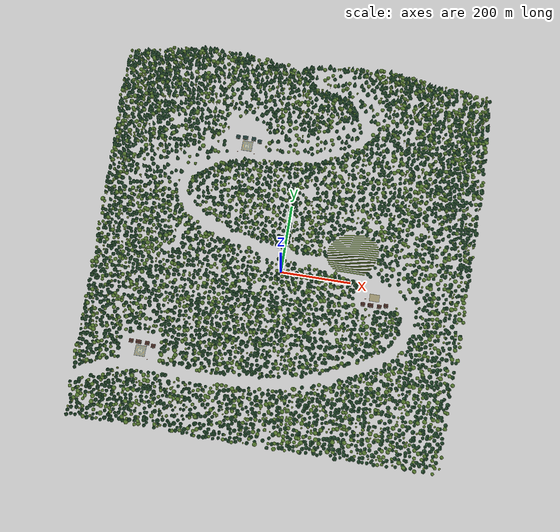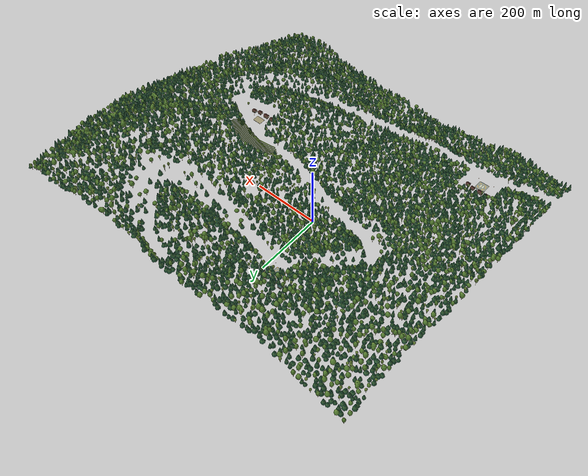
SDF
<sdf version="1.9">
 <world name="alishan_showcase">
  <gravity>0 0 -9.81</gravity>
  <physics name="showcase" type="ignored">
   <max_step_size>0.004</max_step_size>
   <real_time_factor>1</real_time_factor>
  </physics>
  <plugin filename="gz-sim-physics-system" name="gz::sim::systems::Physics"/>
  <plugin filename="gz-sim-user-commands-system" name="gz::sim::systems::UserCommands"/>
  <plugin filename="gz-sim-scene-broadcaster-system" name="gz::sim::systems::SceneBroadcaster"/>
  <scene>
   <ambient>0.64 0.67 0.68 1</ambient>
   <background>0.72 0.82 0.88 1</background>
   <shadows>true</shadows>
  </scene>
  <light name="morning_sun" type="directional">
   <pose>0 0 1000 0 0 0</pose>
   <diffuse>0.95 0.88 0.73 1</diffuse>
   <specular>0.10 0.10 0.08 1</specular>
   <direction>-0.45 0.35 -0.85</direction>
  </light>
  <include><uri>model://showcase_clearings</uri></include>
  <include><uri>model://showcase_village</uri></include>
  <include><uri>model://showcase_tea</uri></include>
  <include><uri>model://showcase_forest</uri></include>
 </world>
</sdf>

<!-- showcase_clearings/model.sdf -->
<sdf version="1.9">
  <model name="showcase_clearings">
    <static>true</static>
    <link name="landscape">
      <visual name="clearings">
        <cast_shadows>true</cast_shadows>
        <geometry>
          <mesh>
            <uri>model://showcase_clearings/meshes/clearings.dae</uri>
          </mesh>
        </geometry>
      </visual>
      <collision name="foundation_0">
        <pose>-325 -302 125.40058656560478 0 0 0</pose>
        <geometry>
          <box>
            <size>28 28 0.6</size>
          </box>
        </geometry>
      </collision>
      <collision name="foundation_1">
        <pose>260 -73 170.4130429163623 0 0 0</pose>
        <geometry>
          <box>
            <size>26 19 0.4</size>
          </box>
        </geometry>
      </collision>
      <collision name="foundation_2">
        <pose>-140 285 197.94680746284016 0 0 0</pose>
        <geometry>
          <box>
            <size>28 28 0.6</size>
          </box>
        </geometry>
      </collision>
    </link>
  </model>
</sdf>

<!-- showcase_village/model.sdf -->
<sdf version="1.9">
  <model name="showcase_village">
    <static>true</static>
    <link name="landscape">
      <visual name="cabins">
        <cast_shadows>true</cast_shadows>
        <geometry>
          <mesh>
            <uri>model://showcase_village/meshes/cabins.dae</uri>
          </mesh>
        </geometry>
      </visual>
      <collision name="foundation_0">
        <pose>-353 -280 129.0505865656048 0 0 0</pose>
        <geometry>
          <box>
            <size>9 8 7.0</size>
          </box>
        </geometry>
      </collision>
      <collision name="foundation_1">
        <pose>-333 -280 129.5505865656048 0 0 0</pose>
        <geometry>
          <box>
            <size>12 8 8.0</size>
          </box>
        </geometry>
      </collision>
      <collision name="foundation_2">
        <pose>-310 -280 129.0505865656048 0 0 0</pose>
        <geometry>
          <box>
            <size>9 8 7.0</size>
          </box>
        </geometry>
      </collision>
      <collision name="foundation_3">
        <pose>-293 -285 129.0505865656048 0 0 0</pose>
        <geometry>
          <box>
            <size>9 8 7.0</size>
          </box>
        </geometry>
      </collision>
      <collision name="foundation_4">
        <pose>232 -95 174.0330429163623 0 0 0</pose>
        <geometry>
          <box>
            <size>9 8 7.0</size>
          </box>
        </geometry>
      </collision>
      <collision name="foundation_5">
        <pose>252 -95 174.5330429163623 0 0 0</pose>
        <geometry>
          <box>
            <size>12 8 8.0</size>
          </box>
        </geometry>
      </collision>
      <collision name="foundation_6">
        <pose>275 -95 174.0330429163623 0 0 0</pose>
        <geometry>
          <box>
            <size>9 8 7.0</size>
          </box>
        </geometry>
      </collision>
      <collision name="foundation_7">
        <pose>292 -90 174.0330429163623 0 0 0</pose>
        <geometry>
          <box>
            <size>9 8 7.0</size>
          </box>
        </geometry>
      </collision>
      <collision name="foundation_8">
        <pose>-168 307 201.59680746284016 0 0 0</pose>
        <geometry>
          <box>
            <size>9 8 7.0</size>
          </box>
        </geometry>
      </collision>
      <collision name="foundation_9">
        <pose>-148 307 202.09680746284016 0 0 0</pose>
        <geometry>
          <box>
            <size>12 8 8.0</size>
          </box>
        </geometry>
      </collision>
      <collision name="foundation_10">
        <pose>-125 307 201.59680746284016 0 0 0</pose>
        <geometry>
          <box>
            <size>9 8 7.0</size>
          </box>
        </geometry>
      </collision>
      <collision name="foundation_11">
        <pose>-108 302 201.59680746284016 0 0 0</pose>
        <geometry>
          <box>
            <size>9 8 7.0</size>
          </box>
        </geometry>
      </collision>
    </link>
  </model>
</sdf>

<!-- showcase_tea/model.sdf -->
<sdf version="1.9">
  <model name="showcase_tea">
    <static>true</static>
    <link name="landscape">
      <visual name="tea_rows">
        <cast_shadows>true</cast_shadows>
        <geometry>
          <mesh>
            <uri>model://showcase_tea/meshes/tea_rows.dae</uri>
          </mesh>
        </geometry>
      </visual>
    </link>
  </model>
</sdf>

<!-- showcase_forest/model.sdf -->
<sdf version="1.9">
  <model name="showcase_forest">
    <static>true</static>
    <link name="landscape">
      <visual name="forest_0_0">
        <cast_shadows>true</cast_shadows>
        <geometry>
          <mesh>
            <uri>model://showcase_forest/meshes/forest_0_0.dae</uri>
          </mesh>
        </geometry>
      </visual>
      <visual name="forest_0_1">
        <cast_shadows>true</cast_shadows>
        <geometry>
          <mesh>
            <uri>model://showcase_forest/meshes/forest_0_1.dae</uri>
          </mesh>
        </geometry>
      </visual>
      <visual name="forest_0_2">
        <cast_shadows>true</cast_shadows>
        <geometry>
          <mesh>
            <uri>model://showcase_forest/meshes/forest_0_2.dae</uri>
          </mesh>
        </geometry>
      </visual>
      <visual name="forest_0_3">
        <cast_shadows>true</cast_shadows>
        <geometry>
          <mesh>
            <uri>model://showcase_forest/meshes/forest_0_3.dae</uri>
          </mesh>
        </geometry>
      </visual>
      <visual name="forest_0_4">
        <cast_shadows>true</cast_shadows>
        <geometry>
          <mesh>
            <uri>model://showcase_forest/meshes/forest_0_4.dae</uri>
          </mesh>
        </geometry>
      </visual>
      <visual name="forest_0_5">
        <cast_shadows>true</cast_shadows>
        <geometry>
          <mesh>
            <uri>model://showcase_forest/meshes/forest_0_5.dae</uri>
          </mesh>
        </geometry>
      </visual>
      <visual name="forest_0_6">
        <cast_shadows>true</cast_shadows>
        <geometry>
          <mesh>
            <uri>model://showcase_forest/meshes/forest_0_6.dae</uri>
          </mesh>
        </geometry>
      </visual>
      <visual name="forest_0_7">
        <cast_shadows>true</cast_shadows>
        <geometry>
          <mesh>
            <uri>model://showcase_forest/meshes/forest_0_7.dae</uri>
          </mesh>
        </geometry>
      </visual>
      <visual name="forest_1_0">
        <cast_shadows>true</cast_shadows>
        <geometry>
          <mesh>
            <uri>model://showcase_forest/meshes/forest_1_0.dae</uri>
          </mesh>
        </geometry>
      </visual>
      <visual name="forest_1_1">
        <cast_shadows>true</cast_shadows>
        <geometry>
          <mesh>
            <uri>model://showcase_forest/meshes/forest_1_1.dae</uri>
          </mesh>
        </geometry>
      </visual>
      <visual name="forest_1_2">
        <cast_shadows>true</cast_shadows>
        <geometry>
          <mesh>
            <uri>model://showcase_forest/meshes/forest_1_2.dae</uri>
          </mesh>
        </geometry>
      </visual>
      <visual name="forest_1_3">
        <cast_shadows>true</cast_shadows>
        <geometry>
          <mesh>
            <uri>model://showcase_forest/meshes/forest_1_3.dae</uri>
          </mesh>
        </geometry>
      </visual>
      <visual name="forest_1_4">
        <cast_shadows>true</cast_shadows>
        <geometry>
          <mesh>
            <uri>model://showcase_forest/meshes/forest_1_4.dae</uri>
          </mesh>
        </geometry>
      </visual>
      <visual name="forest_1_5">
        <cast_shadows>true</cast_shadows>
        <geometry>
          <mesh>
            <uri>model://showcase_forest/meshes/forest_1_5.dae</uri>
          </mesh>
        </geometry>
      </visual>
      <visual name="forest_1_6">
        <cast_shadows>true</cast_shadows>
        <geometry>
          <mesh>
            <uri>model://showcase_forest/meshes/forest_1_6.dae</uri>
          </mesh>
        </geometry>
      </visual>
      <visual name="forest_1_7">
        <cast_shadows>true</cast_shadows>
        <geometry>
          <mesh>
            <uri>model://showcase_forest/meshes/forest_1_7.dae</uri>
          </mesh>
        </geometry>
      </visual>
      <visual name="forest_2_0">
        <cast_shadows>true</cast_shadows>
        <geometry>
          <mesh>
            <uri>model://showcase_forest/meshes/forest_2_0.dae</uri>
          </mesh>
        </geometry>
      </visual>
      <visual name="forest_2_1">
        <cast_shadows>true</cast_shadows>
        <geometry>
          <mesh>
            <uri>model://showcase_forest/meshes/forest_2_1.dae</uri>
          </mesh>
        </geometry>
      </visual>
      <visual name="forest_2_2">
        <cast_shadows>true</cast_shadows>
        <geometry>
          <mesh>
            <uri>model://showcase_forest/meshes/forest_2_2.dae</uri>
          </mesh>
        </geometry>
      </visual>
      <visual name="forest_2_3">
        <cast_shadows>true</cast_shadows>
        <geometry>
          <mesh>
            <uri>model://showcase_forest/meshes/forest_2_3.dae</uri>
          </mesh>
        </geometry>
      </visual>
      <visual name="forest_2_4">
        <cast_shadows>true</cast_shadows>
        <geometry>
          <mesh>
            <uri>model://showcase_forest/meshes/forest_2_4.dae</uri>
          </mesh>
        </geometry>
      </visual>
      <visual name="forest_2_5">
        <cast_shadows>true</cast_shadows>
        <geometry>
          <mesh>
            <uri>model://showcase_forest/meshes/forest_2_5.dae</uri>
          </mesh>
        </geometry>
      </visual>
      <visual name="forest_2_6">
        <cast_shadows>true</cast_shadows>
        <geometry>
          <mesh>
            <uri>model://showcase_forest/meshes/forest_2_6.dae</uri>
          </mesh>
        </geometry>
      </visual>
      <visual name="forest_2_7">
        <cast_shadows>true</cast_shadows>
        <geometry>
          <mesh>
            <uri>model://showcase_forest/meshes/forest_2_7.dae</uri>
          </mesh>
        </geometry>
      </visual>
      <visual name="forest_3_0">
        <cast_shadows>true</cast_shadows>
        <geometry>
          <mesh>
            <uri>model://showcase_forest/meshes/forest_3_0.dae</uri>
          </mesh>
        </geometry>
      </visual>
      <visual name="forest_3_1">
        <cast_shadows>true</cast_shadows>
        <geometry>
          <mesh>
            <uri>model://showcase_forest/meshes/forest_3_1.dae</uri>
          </mesh>
        </geometry>
      </visual>
      <visual name="forest_3_2">
        <cast_shadows>true</cast_shadows>
        <geometry>
          <mesh>
            <uri>model://showcase_forest/meshes/forest_3_2.dae</uri>
          </mesh>
        </geometry>
      </visual>
      <visual name="forest_3_3">
        <cast_shadows>true</cast_shadows>
        <geometry>
          <mesh>
            <uri>model://showcase_forest/meshes/forest_3_3.dae</uri>
          </mesh>
        </geometry>
      </visual>
      <visual name="forest_3_4">
        <cast_shadows>true</cast_shadows>
        <geometry>
          <mesh>
            <uri>model://showcase_forest/meshes/forest_3_4.dae</uri>
          </mesh>
        </geometry>
      </visual>
      <visual name="forest_3_5">
        <cast_shadows>true</cast_shadows>
        <geometry>
          <mesh>
            <uri>model://showcase_forest/meshes/forest_3_5.dae</uri>
          </mesh>
        </geometry>
      </visual>
      <visual name="forest_3_6">
        <cast_shadows>true</cast_shadows>
        <geometry>
          <mesh>
            <uri>model://showcase_forest/meshes/forest_3_6.dae</uri>
          </mesh>
        </geometry>
      </visual>
      <visual name="forest_3_7">
        <cast_shadows>true</cast_shadows>
        <geometry>
          <mesh>
            <uri>model://showcase_forest/meshes/forest_3_7.dae</uri>
          </mesh>
        </geometry>
      </visual>
      <visual name="forest_4_0">
        <cast_shadows>true</cast_shadows>
        <geometry>
          <mesh>
            <uri>model://showcase_forest/meshes/forest_4_0.dae</uri>
          </mesh>
        </geometry>
      </visual>
      <visual name="forest_4_1">
        <cast_shadows>true</cast_shadows>
        <geometry>
          <mesh>
            <uri>model://showcase_forest/meshes/forest_4_1.dae</uri>
          </mesh>
        </geometry>
      </visual>
      <visual name="forest_4_2">
        <cast_shadows>true</cast_shadows>
        <geometry>
          <mesh>
            <uri>model://showcase_forest/meshes/forest_4_2.dae</uri>
          </mesh>
        </geometry>
      </visual>
      <visual name="forest_4_3">
        <cast_shadows>true</cast_shadows>
        <geometry>
          <mesh>
            <uri>model://showcase_forest/meshes/forest_4_3.dae</uri>
          </mesh>
        </geometry>
      </visual>
      <visual name="forest_4_4">
        <cast_shadows>true</cast_shadows>
        <geometry>
          <mesh>
            <uri>model://showcase_forest/meshes/forest_4_4.dae</uri>
          </mesh>
        </geometry>
      </visual>
      <visual name="forest_4_5">
        <cast_shadows>true</cast_shadows>
        <geometry>
          <mesh>
            <uri>model://showcase_forest/meshes/forest_4_5.dae</uri>
          </mesh>
        </geometry>
      </visual>
      <visual name="forest_4_6">
        <cast_shadows>true</cast_shadows>
        <geometry>
          <mesh>
            <uri>model://showcase_forest/meshes/forest_4_6.dae</uri>
          </mesh>
        </geometry>
      </visual>
      <visual name="forest_4_7">
        <cast_shadows>true</cast_shadows>
        <geometry>
          <mesh>
            <uri>model://showcase_forest/meshes/forest_4_7.dae</uri>
          </mesh>
        </geometry>
      </visual>
      <visual name="forest_5_0">
        <cast_shadows>true</cast_shadows>
        <geometry>
          <mesh>
            <uri>model://showcase_forest/meshes/forest_5_0.dae</uri>
          </mesh>
        </geometry>
      </visual>
      <visual name="forest_5_1">
        <cast_shadows>true</cast_shadows>
        <geometry>
          <mesh>
            <uri>model://showcase_forest/meshes/forest_5_1.dae</uri>
          </mesh>
        </geometry>
      </visual>
      <visual name="forest_5_2">
        <cast_shadows>true</cast_shadows>
        <geometry>
          <mesh>
            <uri>model://showcase_forest/meshes/forest_5_2.dae</uri>
          </mesh>
        </geometry>
      </visual>
      <visual name="forest_5_3">
        <cast_shadows>true</cast_shadows>
        <geometry>
          <mesh>
            <uri>model://showcase_forest/meshes/forest_5_3.dae</uri>
          </mesh>
        </geometry>
      </visual>
      <visual name="forest_5_4">
        <cast_shadows>true</cast_shadows>
        <geometry>
          <mesh>
            <uri>model://showcase_forest/meshes/forest_5_4.dae</uri>
          </mesh>
        </geometry>
      </visual>
      <visual name="forest_5_5">
        <cast_shadows>true</cast_shadows>
        <geometry>
          <mesh>
            <uri>model://showcase_forest/meshes/forest_5_5.dae</uri>
          </mesh>
        </geometry>
      </visual>
      <visual name="forest_5_6">
        <cast_shadows>true</cast_shadows>
        <geometry>
          <mesh>
            <uri>model://showcase_forest/meshes/forest_5_6.dae</uri>
          </mesh>
        </geometry>
      </visual>
      <visual name="forest_5_7">
        <cast_shadows>true</cast_shadows>
        <geometry>
          <mesh>
            <uri>model://showcase_forest/meshes/forest_5_7.dae</uri>
          </mesh>
        </geometry>
      </visual>
      <visual name="forest_6_0">
        <cast_shadows>true</cast_shadows>
        <geometry>
          <mesh>
            <uri>model://showcase_forest/meshes/forest_6_0.dae</uri>
          </mesh>
        </geometry>
      </visual>
      <visual name="forest_6_1">
        <cast_shadows>true</cast_shadows>
        <geometry>
          <mesh>
            <uri>model://showcase_forest/meshes/forest_6_1.dae</uri>
          </mesh>
        </geometry>
      </visual>
      <visual name="forest_6_2">
        <cast_shadows>true</cast_shadows>
        <geometry>
          <mesh>
            <uri>model://showcase_forest/meshes/forest_6_2.dae</uri>
          </mesh>
        </geometry>
      </visual>
      <visual name="forest_6_3">
        <cast_shadows>true</cast_shadows>
        <geometry>
          <mesh>
            <uri>model://showcase_forest/meshes/forest_6_3.dae</uri>
          </mesh>
        </geometry>
      </visual>
      <visual name="forest_6_4">
        <cast_shadows>true</cast_shadows>
        <geometry>
          <mesh>
            <uri>model://showcase_forest/meshes/forest_6_4.dae</uri>
          </mesh>
        </geometry>
      </visual>
      <visual name="forest_6_5">
        <cast_shadows>true</cast_shadows>
        <geometry>
          <mesh>
            <uri>model://showcase_forest/meshes/forest_6_5.dae</uri>
          </mesh>
        </geometry>
      </visual>
      <visual name="forest_6_6">
        <cast_shadows>true</cast_shadows>
        <geometry>
          <mesh>
            <uri>model://showcase_forest/meshes/forest_6_6.dae</uri>
          </mesh>
        </geometry>
      </visual>
      <visual name="forest_6_7">
        <cast_shadows>true</cast_shadows>
        <geometry>
          <mesh>
            <uri>model://showcase_forest/meshes/forest_6_7.dae</uri>
          </mesh>
        </geometry>
      </visual>
      <visual name="forest_7_0">
        <cast_shadows>true</cast_shadows>
        <geometry>
          <mesh>
            <uri>model://showcase_forest/meshes/forest_7_0.dae</uri>
          </mesh>
        </geometry>
      </visual>
      <visual name="forest_7_1">
        <cast_shadows>true</cast_shadows>
        <geometry>
          <mesh>
            <uri>model://showcase_forest/meshes/forest_7_1.dae</uri>
          </mesh>
        </geometry>
      </visual>
      <visual name="forest_7_2">
        <cast_shadows>true</cast_shadows>
        <geometry>
          <mesh>
            <uri>model://showcase_forest/meshes/forest_7_2.dae</uri>
          </mesh>
        </geometry>
      </visual>
      <visual name="forest_7_3">
        <cast_shadows>true</cast_shadows>
        <geometry>
          <mesh>
            <uri>model://showcase_forest/meshes/forest_7_3.dae</uri>
          </mesh>
        </geometry>
      </visual>
      <visual name="forest_7_4">
        <cast_shadows>true</cast_shadows>
        <geometry>
          <mesh>
            <uri>model://showcase_forest/meshes/forest_7_4.dae</uri>
          </mesh>
        </geometry>
      </visual>
      <visual name="forest_7_5">
        <cast_shadows>true</cast_shadows>
        <geometry>
          <mesh>
            <uri>model://showcase_forest/meshes/forest_7_5.dae</uri>
          </mesh>
        </geometry>
      </visual>
      <visual name="forest_7_6">
        <cast_shadows>true</cast_shadows>
        <geometry>
          <mesh>
            <uri>model://showcase_forest/meshes/forest_7_6.dae</uri>
          </mesh>
        </geometry>
      </visual>
      <visual name="forest_7_7">
        <cast_shadows>true</cast_shadows>
        <geometry>
          <mesh>
            <uri>model://showcase_forest/meshes/forest_7_7.dae</uri>
          </mesh>
        </geometry>
      </visual>
    </link>
  </model>
</sdf>
